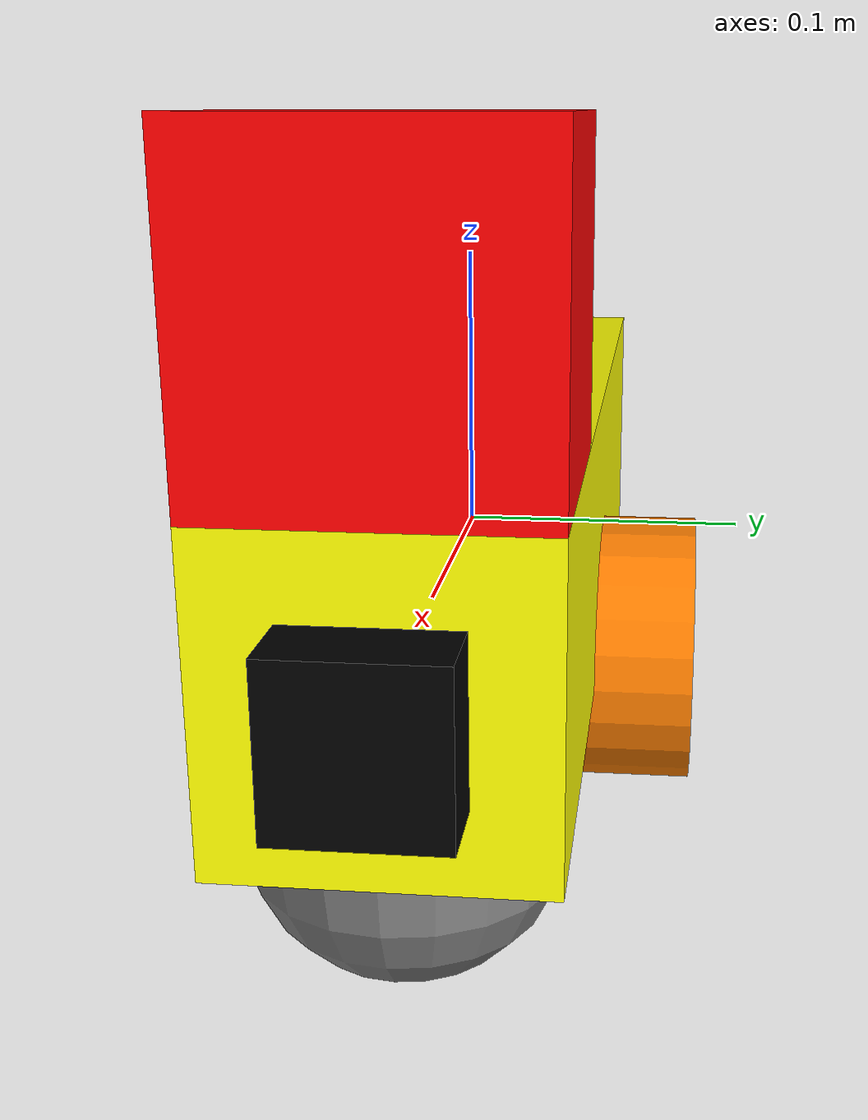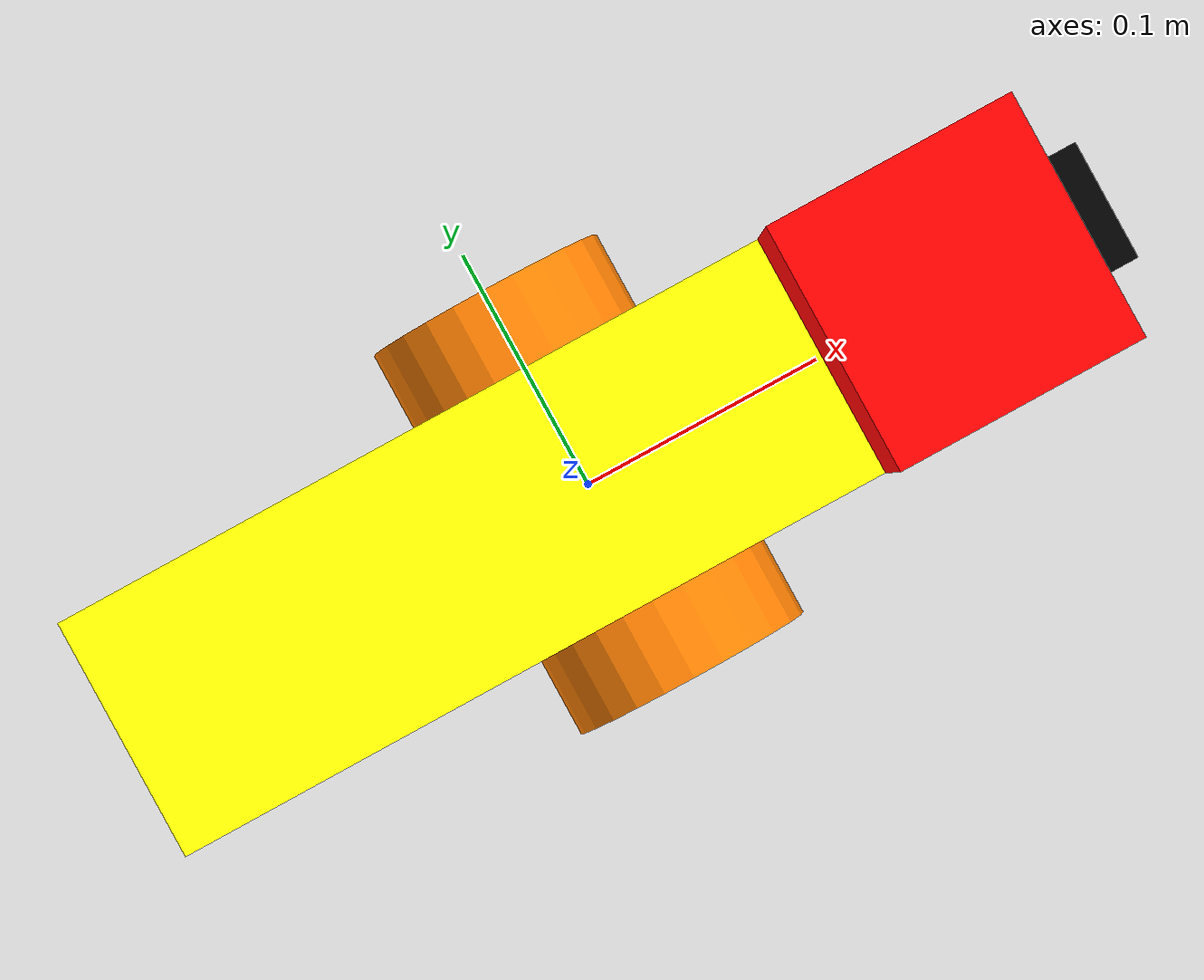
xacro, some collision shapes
<?xml version='1.0'?>
<robot name="my_robot" xmlns:xacro="http://www.ros.org/wiki/xacro">
<xacro:include filename="$(find my_robot)/urdf/my_robot.gazebo" />
  <!-- robot footprint -->
  <link name="robot_footprint"/>

  <!-- CHASSIS -->
  <link name='chassis'>
	<pose>0 0 0.1 0 0 0</pose>

	<inertial>
	  <mass value="15.0"/>
	  <origin xyz="0.0 0 0" rpy=" 0 0 0"/>
	  <inertia
		  ixx="0.1" ixy="0" ixz="0"
		  iyy="0.1" iyz="0"
		  izz="0.1"
	  />
	</inertial>

	<collision name='collision'>
	  <origin xyz="0 0 0" rpy=" 0 0 0"/>
	  <geometry>
		<box size=".4 .1 .1"/>
	  </geometry>
	</collision>

	<visual name='chassis_visual'>
	  <origin xyz="0 0 0" rpy=" 0 0 0"/>
	  <geometry>
		<box size=".4 .1 .1"/>
	  </geometry>
	  <material name="yellow">
		<color rgba="1 1 0 1"/>
	  </material>
	</visual>

	<!-- Back caster wheel -->
	<collision name='back_caster_collision'>
	  <origin xyz="-0.15 0 -0.05" rpy=" 0 0 0"/>
	  <geometry>
		<sphere radius="0.05"/>
	  </geometry>
	</collision>

	<visual name='back_caster_visual'>
	  <origin xyz="-0.15 0 -0.05" rpy=" 0 0 0"/>
	  <geometry>
		<sphere radius="0.05"/>
	  </geometry>
	  <material name="grey">
		<color rgba="0.5 0.5 0.5 1"/>
	  </material>
	</visual>

	<!-- Front caster wheel -->
	<collision name='front_caster_collision'>
	  <origin xyz="0.15 0 -0.05" rpy=" 0 0 0"/>
	  <geometry>
		<sphere radius="0.05"/>
	  </geometry>
	</collision>

	<visual name='front_caster_visual'>
	  <origin xyz="0.15 0 -0.05" rpy=" 0 0 0"/>
	  <geometry>
		<sphere radius="0.05"/>
	  </geometry>
	  <material name="grey">
		<color rgba="0.5 0.5 0.5 1"/>
	  </material>
	</visual>

  </link>

  <!-- LEFT WHEEL LINK -->
  <link name="left_wheel">

	<!-- Inertia -->
	<inertial>
	  <origin xyz="0 0 0" rpy="0 1.5707 1.5707"/>
	  <mass value="5"/>
	  <inertia
	ixx="0.1" ixy="0"   ixz="0"
	iyy="0.1" iyz="0"   izz="0.1"/>
	</inertial>

	<!-- Collision -->
	<collision>
	  <origin xyz="0 0 0" rpy="0 1.5707 1.5707"/>
	  <geometry>
	<cylinder radius="0.05" length="0.05"/>
	  </geometry>
	</collision>

	<!-- Visual -->
	<visual>
	  <origin xyz="0 0 0" rpy="0 1.5707 1.5707"/>
	  <geometry>
	<cylinder radius="0.05" length="0.05"/>
	  </geometry>
	  <material name="orange">
		<color rgba="1 0.5 0 1"/>
	  </material>
	</visual>

 </link>

  <!-- RIGHT WHEEL LINK -->
 <link name="right_wheel">
	<!-- Inertia -->
	<inertial>
	  <origin xyz="0 0 0" rpy="0 1.5707 1.5707"/>
	  <mass value="5"/>
	  <inertia
	ixx="0.1" ixy="0"   ixz="0"
	iyy="0.1" iyz="0"   izz="0.1"/>
	</inertial>

	<!-- Collision -->
	<collision>
	  <origin xyz="0 0 0" rpy="0 1.5707 1.5707"/>
	  <geometry>
	<cylinder radius="0.05" length="0.05"/>
	  </geometry>
	</collision>

	<!-- Visual -->
	<visual>
	  <origin xyz="0 0 0" rpy="0 1.5707 1.5707"/>
	  <geometry>
	<cylinder radius="0.05" length="0.05"/>
	  </geometry>
	 <material name="orange">
		<color rgba="1 0.5 0 1"/>
	  </material>
	</visual>

  </link>

  <!-- CAMERA LINK -->
  <link name="camera">

	<!-- Inertial -->
	<inertial>
	  <origin xyz="0 0 0" rpy="0 0 0"/>
	  <mass value="0.1"/>
	  <inertia
	ixx="1e-6" ixy="0" ixz="0"
	iyy="1e-6" iyz="0" izz="1e-6"/>
	</inertial>

	<!-- Collision -->
	<collision>
	  <origin xyz="0 0 0" rpy="0 0 0"/>
	  <geometry>
	<box size="0.05 0.05 0.05"/>
	  </geometry>
	</collision>

	<!-- Visual -->
	<visual>
	  <origin xyz="0 0 0" rpy="0 0 0"/>
	  <geometry>
	<box size="0.05 0.05 0.05"/>
	  </geometry>
	  <material name="black">
		<color rgba="0 0 0 1"/>
	  </material>
	</visual>
  </link>

  <!-- HOKUYO LIDAR LINK -->
  <link name="hokuyo">
	<inertial>
	  <origin xyz="0 0 0" rpy="0 0 0"/>
	  <mass value="1e-5"/>
	  <inertia
	ixx="1e-6" ixy="0" ixz="0"
	iyy="1e-6" iyz="0" izz="1e-6"/>
	</inertial>

	<collision>
	  <origin xyz="0 0 0" rpy="0 0 0"/>
	  <geometry>
	<box size="0.1 0.1 0.1"/>
	  </geometry>
	</collision>

	<visual>
	  <origin xyz="0 0 0" rpy="0 0 0"/>
	  <geometry>
	<mesh filename="package://my_robot/meshes/hokuyo.dae"/>
	  </geometry>
	  <material name="red">
		<color rgba="1 0 0 1"/>
	  </material>
	</visual>
  </link>

  <!-- ============ JOINTS (place AFTER all links) ============ -->

	<joint name="robot_footprint_joint" type="fixed">
		<origin xyz="0 0 0" rpy="0 0 0" />
		<parent link="robot_footprint"/>
		<child link="chassis" />
	</joint>

	<!-- Left wheel joint -->
	<joint type="continuous" name="left_wheel_hinge">
		<origin xyz="0 0.06 -0.05" rpy="0 0 0"/>
		<child link="left_wheel"/>
		<parent link="chassis"/>
		<axis xyz="0 1 0" rpy="0 0 0"/>
		<limit effort="10000" velocity="1000"/>
		<dynamics damping="1.0" friction="1.0"/>
	 </joint>

	<!-- Right wheel joint -->
	  <joint type="continuous" name="right_wheel_hinge">
		<origin xyz="0 -0.06 -0.05" rpy="0 0 0"/>
		<child link="right_wheel"/>
		<parent link="chassis"/>
		<axis xyz="0 1 0" rpy="0 0 0"/>
		<limit effort="10000" velocity="1000"/>
		<dynamics damping="1.0" friction="1.0"/>
	</joint>

	  <!-- CAMERA FIXED JOINT -->
	  <joint name="camera_joint" type="fixed">
		<origin xyz="0.2 0 0" rpy="0 0 0"/>
		<parent link="chassis"/>
		<child  link="camera"/>
	  </joint>

	<!-- Hokuyo lidar joint - front of chassis -->
	<joint name="hokuyo_joint" type="fixed">
		<origin xyz="0.15 0 0.1" rpy="0 0 0"/>
		<parent link="chassis"/>
		<child  link="hokuyo"/>
	</joint>
  <!-- ============ GAZEBO MATERIALS ============ -->
  <gazebo reference="chassis">
    <material>Gazebo/Yellow</material>
  </gazebo>

  <gazebo reference="left_wheel">
    <material>Gazebo/Orange</material>
  </gazebo>

  <gazebo reference="right_wheel">
    <material>Gazebo/Orange</material>
  </gazebo>

  <gazebo reference="camera">
    <material>Gazebo/Black</material>
  </gazebo>

  <gazebo reference="hokuyo">
    <material>Gazebo/Red</material>
  </gazebo>

</robot>
